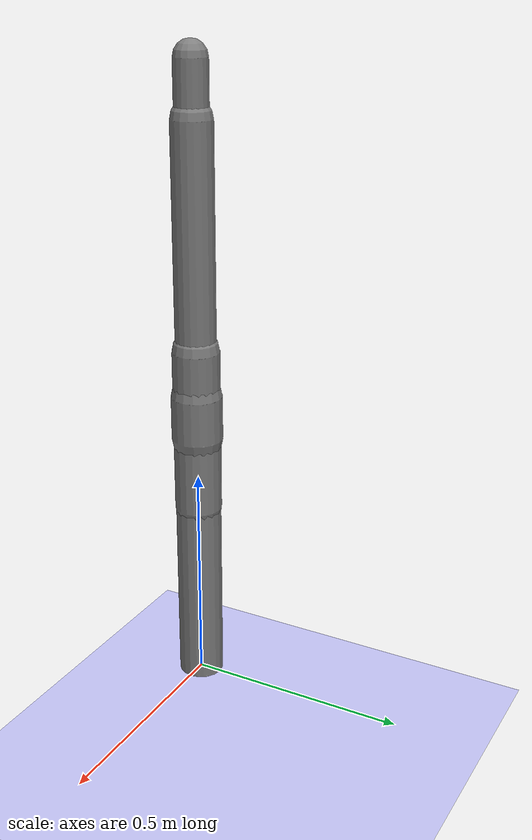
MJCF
<?xml version='1.0' encoding='UTF-8'?>
<mujoco model="robot_model">
  <worldbody>
    <light name="light" pos="0 -3 10" dir="0 0.5 -1" diffuse=".8 .8 .8" specular="0.1 0.1 0.1"/>
    <geom name="floor" type="plane" size="10.0 10.0 0.1" pos="0 0 0" rgba="0.8 0.8 1 1" contype="2" conaffinity="1"/>
    <body name="limb0" pos="0 0 0">
      <geom type="capsule" fromto="0 0 0 0 0 0.44742308145236254" size="0.05125706115371305" density="533.4960993211911" contype="1" conaffinity="2"/>
      <site type="sphere" size="0.01" name="limb0_site0" pos="0 0 0.42747386350418365"/>
      <site type="sphere" size="0.01" name="limb0_site1" pos="0 0 0.21294872038173263"/>
      <freejoint name="limb0_root"/>
      <body name="limb1" pos="0 0 0.42747386350418365">
        <geom type="capsule" fromto="0 0 0 0 0 0.372274530228085" size="0.052960072305996767" density="1069.5549891432568" contype="1" conaffinity="2"/>
        <site type="sphere" size="0.01" name="limb1_site0" pos="0 0 0.3650181458444618"/>
        <site type="sphere" size="0.01" name="limb1_site1" pos="0 0 0.1691509576765875"/>
        <body name="limb2" pos="0 0 0.3650181458444618">
          <geom type="capsule" fromto="0 0 0 0 0 0.5" size="0.045329815490319995" density="1017.2531489540214" contype="1" conaffinity="2"/>
          <site type="sphere" size="0.01" name="limb2_site0" pos="0 0 0.3526236139209608"/>
          <body name="limb3" pos="0 0 0.3526236139209608">
            <geom type="capsule" fromto="0 0 0 0 0 0.26753673816479007" size="0.03682058878779381" density="767.4624212482228" contype="1" conaffinity="2"/>
            <joint name="joint_limb2_limb3_0" type="hinge" axis="0 1 0" range="-39.54825129765963 39.54825129765963" damping="5.0"/>
          </body>
          <joint name="joint_limb1_limb2_0" type="hinge" axis="0 1 0" range="-60.504894728636025 60.504894728636025" damping="5.0"/>
        </body>
        <body name="limb4" pos="0 0 0.1691509576765875">
          <geom type="capsule" fromto="0 0 0 0 0 0.1" size="0.05724087358493288" density="1200.0" contype="1" conaffinity="2"/>
          <joint name="joint_limb1_limb4_0" type="hinge" axis="0 1 0" range="-69.47081860996623 69.47081860996623" damping="5.0"/>
        </body>
        <joint name="joint_limb0_limb1_0" type="hinge" axis="0 1 0" range="-120.0 120.0" damping="5.0"/>
      </body>
      <body name="limb5" pos="0 0 0.21294872038173263">
        <geom type="capsule" fromto="0 0 0 0 0 0.43647014061798706" size="0.041248644928393044" density="789.216346642524" contype="1" conaffinity="2"/>
        <joint name="joint_limb0_limb5_0" type="hinge" axis="0 0 1" range="-45.82744000775369 45.82744000775369" damping="5.0"/>
      </body>
    </body>
  </worldbody>
  <actuator>
    <position name="position_actuator_joint_limb0_limb1_0" joint="joint_limb0_limb1_0" gear="2.0" inheritrange="1" forcerange="-20.869594355142794 20.869594355142794" forcelimited="true" kp="100.0"/>
    <position name="position_actuator_joint_limb1_limb2_0" joint="joint_limb1_limb2_0" gear="1.855224638398584" inheritrange="1" forcerange="-18.401183504925072 18.401183504925072" forcelimited="true" kp="100.0"/>
    <position name="position_actuator_joint_limb2_limb3_0" joint="joint_limb2_limb3_0" gear="1.9577561249166682" inheritrange="1" forcerange="-5.175015919167217 5.175015919167217" forcelimited="true" kp="100.0"/>
    <position name="position_actuator_joint_limb1_limb4_0" joint="joint_limb1_limb4_0" gear="0.9986515773918824" inheritrange="1" forcerange="-10.8897541598689 10.8897541598689" forcelimited="true" kp="100.0"/>
    <position name="position_actuator_joint_limb0_limb5_0" joint="joint_limb0_limb5_0" gear="0.7342032220860385" inheritrange="1" forcerange="-10.36646920093445 10.36646920093445" forcelimited="true" kp="100.0"/>
  </actuator>
</mujoco>
